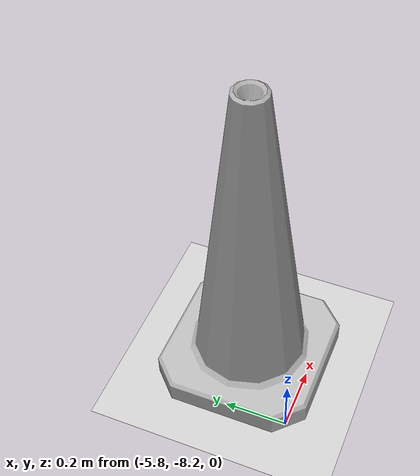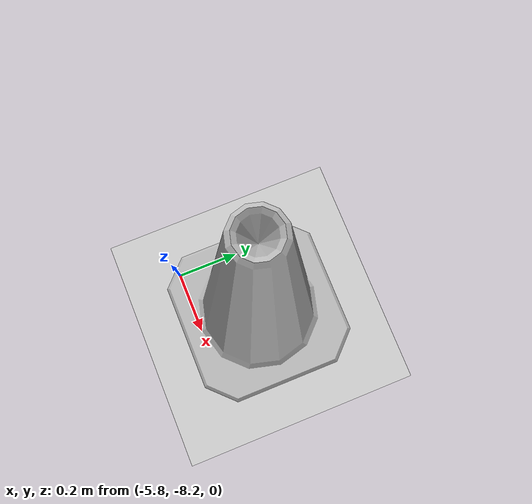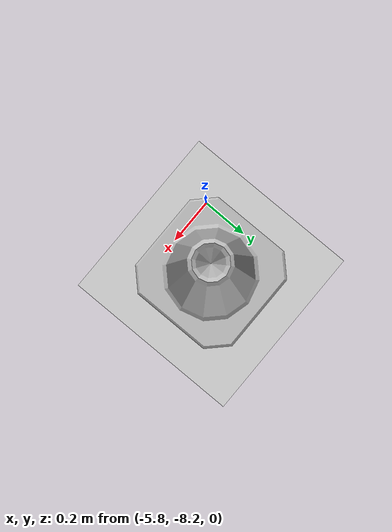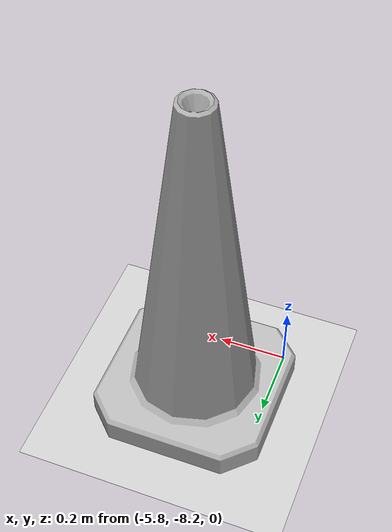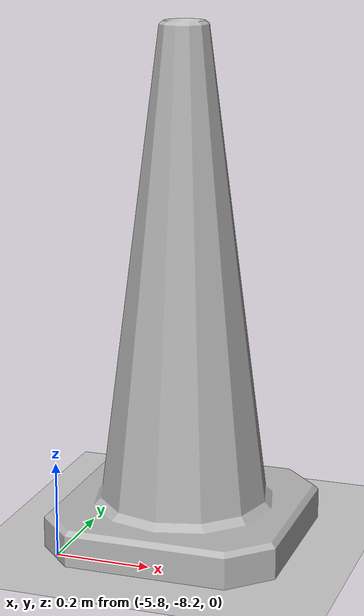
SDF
<?xml version="1.0"?>
<sdf version="1.4">
  <world name="default">
    <include>
      <uri>model://sun</uri>
    </include>
    <model name='ground_plane'>
      <static>1</static>
      <link name='link'>
        <collision name='collision'>
          <geometry>
            <plane>
              <normal>0 0 1</normal>
              <size>150 75</size>
            </plane>
          </geometry>
          <surface>
            <friction>
              <ode>
                <mu>100</mu>
                <mu2>50</mu2>
              </ode>
            </friction>
            <bounce/>
            <contact>
              <ode/>
            </contact>
          </surface>
          <max_contacts>10</max_contacts>
        </collision>
        <visual name='visual'>
          <cast_shadows>0</cast_shadows>
          <geometry>
            <plane>
              <normal>0 0 1</normal>
              <size>150 75</size>
            </plane>
          </geometry>
          <material>
            <script>
              <uri>file://media/materials/scripts/gazebo.material</uri>
              <name>Gazebo/Grey</name>
            </script>
          </material>
        </visual>
        <velocity_decay>
          <linear>0</linear>
          <angular>0</angular>
        </velocity_decay>
        <self_collide>0</self_collide>
        <kinematic>0</kinematic>
        <gravity>1</gravity>
      </link>
    </model>
    <model name="concrete_structures">
      <pose>-30 9 0  0 0 0</pose>
      <static>true</static>
      <link name="body">
        <visual name="visual">
          <geometry>
            <mesh><uri>file:///home/tecchio/code/catkin_husky_at_cimatec/src/cimatec_map/model/SENAI_CIMATEC.stl</uri></mesh>
          </geometry>
        </visual>
      </link>
    </model>
    <model name='Construction Cone'>
      <link name='link'>
        <collision name='collision'>
          <geometry>
            <mesh>
              <scale>10 10 10</scale>
              <uri>model://construction_cone/meshes/construction_cone.dae</uri>
            </mesh>
          </geometry>
          <max_contacts>10</max_contacts>
          <surface>
            <bounce/>
            <friction>
              <ode/>
            </friction>
            <contact>
              <ode/>
            </contact>
          </surface>
        </collision>
        <visual name='visual'>
          <geometry>
            <mesh>
              <scale>10 10 10</scale>
              <uri>model://construction_cone/meshes/construction_cone.dae</uri>
            </mesh>
          </geometry>
        </visual>
        <velocity_decay>
          <linear>0</linear>
          <angular>0</angular>
        </velocity_decay>
        <self_collide>0</self_collide>
        <inertial>
          <inertia>
            <ixx>1</ixx>
            <ixy>0</ixy>
            <ixz>0</ixz>
            <iyy>1</iyy>
            <iyz>0</iyz>
            <izz>1</izz>
          </inertia>
          <mass>1</mass>
        </inertial>
        <kinematic>0</kinematic>
        <gravity>1</gravity>
      </link>
      <pose>-5.59121 -8 0 0 -0 0</pose>
      <static>0</static>
    </model>

  </world>
</sdf>
